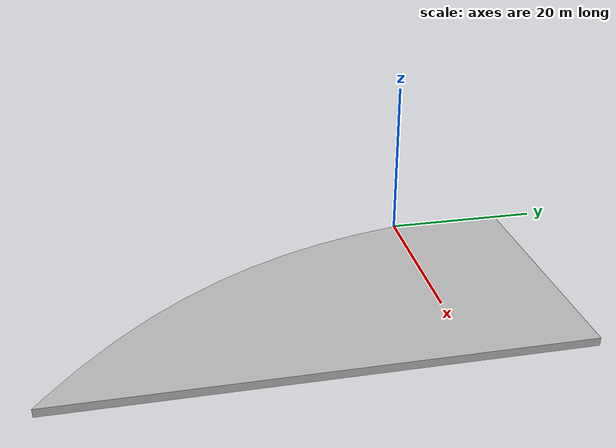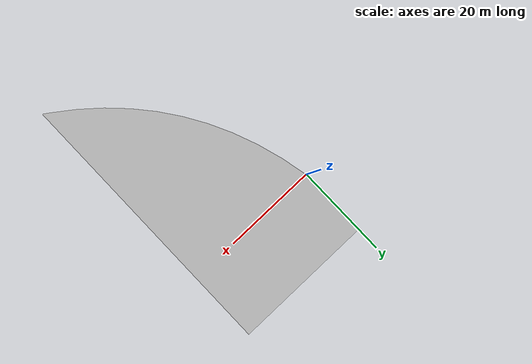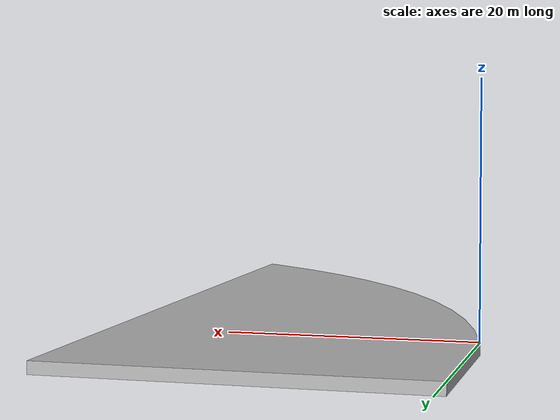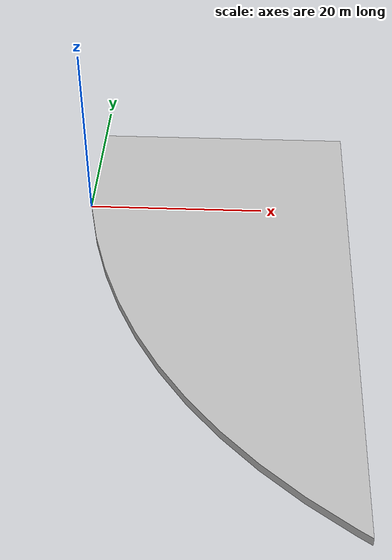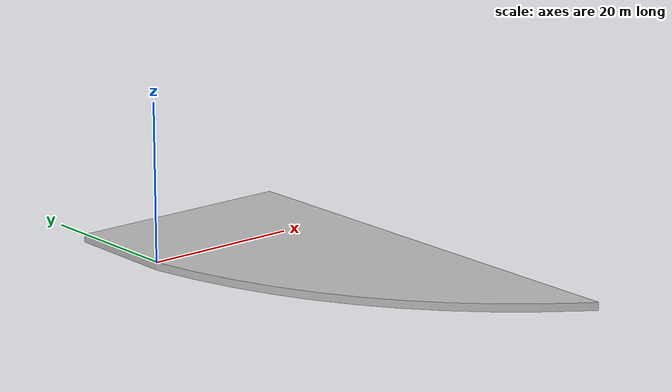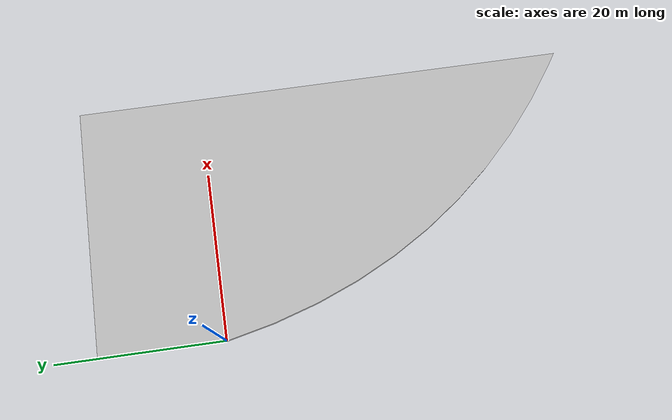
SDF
<sdf version='1.6'>
  <model name='construction_2'>
    <link name='base_link'>
      <pose frame=''>0 0 0 0 -0 0</pose>
      <inertial>
        <pose frame=''>17.2215 -8.81151 -0.5 0 -0 0</pose>
        <mass>1.3358e+06</mass>
        <inertia>
          <ixx>2.99022e+08</ixx>
          <ixy>5.40832e+07</ixy>
          <ixz>-7.89113</ixz>
          <iyy>8.8499e+07</iyy>
          <iyz>-8.30222</iyz>
          <izz>3.87298e+08</izz>
        </inertia>
      </inertial>
      <collision name='base_link_collision'>
        <pose frame=''>0 0 0 0 -0 0</pose>
        <geometry>
          <mesh>
            <scale>1 1 1</scale>
            <uri>model://construction_2/meshes/base_link.STL</uri>
          </mesh>
        </geometry>
      </collision>
      <visual name='base_link_visual'>
        <pose frame=''>0 0 0 0 -0 0</pose>
        <geometry>
          <mesh>
            <scale>1 1 1</scale>
            <uri>model://construction_2/meshes/base_link.STL</uri>
          </mesh>
        </geometry>
      </visual>
    </link>
  </model>
</sdf>
